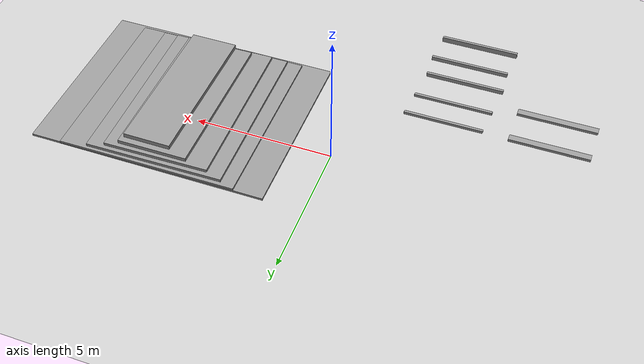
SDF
<sdf version="1.7">
 <world name="default">
  <model name="ground_plane">
   <static>1</static>
   <link name="link">
    <collision name="collision">
     <geometry><plane><normal>0 0 1</normal><size>100 100</size></plane></geometry>
     <surface><friction><ode><mu>0.7</mu><mu2>0.7</mu2></ode></friction></surface>
    </collision>
    <visual name="visual">
     <cast_shadows>0</cast_shadows>
     <geometry><plane><normal>0 0 1</normal><size>100 100</size></plane></geometry>
     <material>
      <script><uri>file://media/materials/scripts/gazebo.material</uri><name>Gazebo/Grey</name></script>
     </material>
    </visual>
   </link>
  </model>
  <light name="sun" type="directional">
   <pose>0 0 10 0 -0 0</pose>
   <diffuse>0.8 0.8 0.8 1</diffuse>
   <specular>0.1 0.1 0.1 1</specular>
   <attenuation>
    <range>1000</range>
    <constant>0.9</constant>
    <linear>0.01</linear>
    <quadratic>0.001</quadratic>
   </attenuation>
   <direction>-0.5 0.5 -1</direction>
   <spot><inner_angle>0</inner_angle><outer_angle>0</outer_angle><falloff>0</falloff></spot>
  </light>
  <gravity>0 0 -9.81</gravity>
  <magnetic_field>6e-06 2.3e-05 -4.2e-05</magnetic_field>
  <atmosphere type="adiabatic"/>
  <physics name="default_physics" default="0" type="ode">
   <max_step_size>0.001</max_step_size>
   <real_time_factor>1</real_time_factor>
   <real_time_update_rate>1000</real_time_update_rate>
  </physics>
  <scene><ambient>0.4 0.4 0.4 1</ambient><background>0.7 0.7 0.7 1</background><shadows>1</shadows></scene>
  <spherical_coordinates>
   <surface_model>EARTH_WGS84</surface_model>
   <latitude_deg>0</latitude_deg>
   <longitude_deg>0</longitude_deg>
   <elevation>0</elevation>
   <heading_deg>0</heading_deg>
  </spherical_coordinates>
  <model name="unit_box">
   <static>1</static>
   <pose>5.78133 -0.659851 0.038678 5e-06 1.5e-05 0.001025</pose>
   <link name="link">
    <inertial>
     <mass>1</mass>
     <inertia>
      <ixx>0.166667</ixx>
      <ixy>0</ixy>
      <ixz>0</ixz>
      <iyy>0.166667</iyy>
      <iyz>0</iyz>
      <izz>0.166667</izz>
     </inertia>
    </inertial>
    <collision name="collision"><geometry><box><size>8.68409 6.67615 0.0802598</size></box></geometry></collision>
    <visual name="visual">
     <geometry><box><size>8.68409 6.67615 0.0802598</size></box></geometry>
     <material>
      <script><name>Gazebo/Grey</name><uri>file://media/materials/scripts/gazebo.material</uri></script>
     </material>
    </visual>
   </link>
  </model>
  <model name="unit_box_clone_clone">
   <static>1</static>
   <pose>5.76077 -0.573205 0.117159 -1.3e-05 1e-05 0.006134</pose>
   <link name="link">
    <inertial>
     <mass>1</mass>
     <inertia>
      <ixx>0.166667</ixx>
      <ixy>0</ixy>
      <ixz>0</ixz>
      <iyy>0.166667</iyy>
      <iyz>0</iyz>
      <izz>0.166667</izz>
     </inertia>
    </inertial>
    <collision name="collision"><geometry><box><size>6.48949 6.53951 0.0795968</size></box></geometry></collision>
    <visual name="visual">
     <geometry><box><size>6.48949 6.53951 0.0795968</size></box></geometry>
     <material>
      <script><name>Gazebo/Grey</name><uri>file://media/materials/scripts/gazebo.material</uri></script>
     </material>
    </visual>
   </link>
  </model>
  <model name="unit_box_clone_clone_0">
   <static>1</static>
   <pose>5.54636 -0.5858 0.19901 -6.8e-05 1e-05 0.013495</pose>
   <link name="link">
    <inertial>
     <mass>1</mass>
     <inertia>
      <ixx>0.166667</ixx>
      <ixy>0</ixy>
      <ixz>0</ixz>
      <iyy>0.166667</iyy>
      <iyz>0</iyz>
      <izz>0.166667</izz>
     </inertia>
    </inertial>
    <collision name="collision"><geometry><box><size>5.00877 6.30633 0.125855</size></box></geometry></collision>
    <visual name="visual">
     <geometry><box><size>5.00877 6.30633 0.125855</size></box></geometry>
     <material>
      <script><name>Gazebo/Grey</name><uri>file://media/materials/scripts/gazebo.material</uri></script>
     </material>
    </visual>
   </link>
  </model>
  <model name="unit_box_clone_clone_1">
   <static>1</static>
   <pose>5.53214 -0.620945 0.264766 -6.9e-05 1e-05 0.016868</pose>
   <link name="link">
    <inertial>
     <mass>1</mass>
     <inertia>
      <ixx>0.166667</ixx>
      <ixy>0</ixy>
      <ixz>0</ixz>
      <iyy>0.166667</iyy>
      <iyz>0</iyz>
      <izz>0.166667</izz>
     </inertia>
    </inertial>
    <collision name="collision"><geometry><box><size>3.8324 6.06711 0.215681</size></box></geometry></collision>
    <visual name="visual">
     <geometry><box><size>3.8324 6.06711 0.215681</size></box></geometry>
     <material>
      <script><name>Gazebo/Grey</name><uri>file://media/materials/scripts/gazebo.material</uri></script>
     </material>
    </visual>
   </link>
  </model>
  <model name="unit_box_0">
   <static>1</static>
   <pose>5.67204 -0.620348 0.396278 1.6e-05 4.6e-05 0.004141</pose>
   <link name="link">
    <inertial>
     <mass>1</mass>
     <inertia>
      <ixx>0.166667</ixx>
      <ixy>0</ixy>
      <ixz>0</ixz>
      <iyy>0.166667</iyy>
      <iyz>0</iyz>
      <izz>0.166667</izz>
     </inertia>
    </inertial>
    <collision name="collision"><geometry><box><size>2.5387 5.78441 0.219353</size></box></geometry></collision>
    <visual name="visual">
     <geometry><box><size>2.5387 5.78441 0.219353</size></box></geometry>
     <material>
      <script><name>Gazebo/Grey</name><uri>file://media/materials/scripts/gazebo.material</uri></script>
     </material>
    </visual>
   </link>
  </model>
  <model name="unit_box_1">
   <static>1</static>
   <pose>5.93033 -0.737289 0.507139 1.6e-05 4.6e-05 -0.0027</pose>
   <link name="link">
    <inertial>
     <mass>1</mass>
     <inertia>
      <ixx>0.166667</ixx>
      <ixy>0</ixy>
      <ixz>0</ixz>
      <iyy>0.166667</iyy>
      <iyz>0</iyz>
      <izz>0.166667</izz>
     </inertia>
    </inertial>
    <collision name="collision"><geometry><box><size>1.72237 5.5961 0.326992</size></box></geometry></collision>
    <visual name="visual">
     <geometry><box><size>1.72237 5.5961 0.326992</size></box></geometry>
     <material>
      <script><name>Gazebo/Grey</name><uri>file://media/materials/scripts/gazebo.material</uri></script>
     </material>
    </visual>
   </link>
  </model>
  <model name="unit_box_2">
   <link name="link">
    <inertial>
     <mass>1</mass>
     <inertia>
      <ixx>0.166667</ixx>
      <ixy>0</ixy>
      <ixz>0</ixz>
      <iyy>0.166667</iyy>
      <iyz>0</iyz>
      <izz>0.166667</izz>
     </inertia>
    </inertial>
    <visual name="visual">
     <geometry><box><size>2.87721 0.1 0.1</size></box></geometry>
     <material>
      <script><name>Gazebo/Grey</name><uri>file://media/materials/scripts/gazebo.material</uri></script>
      <shader type="pixel"><normal_map>__default__</normal_map></shader>
      <ambient>0.3 0.3 0.3 1</ambient>
      <diffuse>0.7 0.7 0.7 1</diffuse>
      <specular>0.01 0.01 0.01 1</specular>
      <emissive>0 0 0 1</emissive>
     </material>
    </visual>
    <collision name="collision">
     <geometry><box><size>2.87721 0.1 0.1</size></box></geometry>
     <surface>
      <friction>
       <ode><mu>1</mu><mu2>1</mu2><fdir1>0 0 0</fdir1><slip1>0</slip1><slip2>0</slip2></ode>
       <torsional>
        <coefficient>1</coefficient>
        <patch_radius>0</patch_radius>
        <surface_radius>0</surface_radius>
        <use_patch_radius>1</use_patch_radius>
        <ode><slip>0</slip></ode>
       </torsional>
      </friction>
      <bounce><restitution_coefficient>0</restitution_coefficient><threshold>1e+06</threshold></bounce>
      <contact>
       <collide_without_contact>0</collide_without_contact>
       <collide_without_contact_bitmask>1</collide_without_contact_bitmask>
       <collide_bitmask>1</collide_bitmask>
       <ode>
        <soft_cfm>0</soft_cfm>
        <soft_erp>0.2</soft_erp>
        <kp>1e+13</kp>
        <kd>1</kd>
        <max_vel>0.01</max_vel>
        <min_depth>0</min_depth>
       </ode>
       <bullet>
        <split_impulse>1</split_impulse>
        <split_impulse_penetration_threshold>-0.01</split_impulse_penetration_threshold>
        <soft_cfm>0</soft_cfm>
        <soft_erp>0.2</soft_erp>
        <kp>1e+13</kp>
        <kd>1</kd>
       </bullet>
      </contact>
     </surface>
    </collision>
   </link>
   <static>0</static>
   <pose>5.10246 -1.16009 -0.000733 -0.000531 0.035372 -0.01502</pose>
  </model>
  <model name="pipe_0.1">
   <link name="link">
    <inertial>
     <mass>1</mass>
     <inertia>
      <ixx>0.166667</ixx>
      <ixy>0</ixy>
      <ixz>0</ixz>
      <iyy>0.166667</iyy>
      <iyz>0</iyz>
      <izz>0.166667</izz>
     </inertia>
    </inertial>
    <visual name="visual">
     <geometry><box><size>2.87721 0.1 0.1</size></box></geometry>
     <material>
      <script><name>Gazebo/Grey</name><uri>file://media/materials/scripts/gazebo.material</uri></script>
      <shader type="pixel"><normal_map>__default__</normal_map></shader>
      <ambient>0.3 0.3 0.3 1</ambient>
      <diffuse>0.7 0.7 0.7 1</diffuse>
      <specular>0.01 0.01 0.01 1</specular>
      <emissive>0 0 0 1</emissive>
     </material>
    </visual>
    <collision name="collision">
     <geometry><box><size>2.87721 0.1 0.1</size></box></geometry>
     <surface>
      <friction>
       <ode><mu>1</mu><mu2>1</mu2><fdir1>0 0 0</fdir1><slip1>0</slip1><slip2>0</slip2></ode>
       <torsional>
        <coefficient>1</coefficient>
        <patch_radius>0</patch_radius>
        <surface_radius>0</surface_radius>
        <use_patch_radius>1</use_patch_radius>
        <ode><slip>0</slip></ode>
       </torsional>
      </friction>
      <bounce><restitution_coefficient>0</restitution_coefficient><threshold>1e+06</threshold></bounce>
      <contact>
       <collide_without_contact>0</collide_without_contact>
       <collide_without_contact_bitmask>1</collide_without_contact_bitmask>
       <collide_bitmask>1</collide_bitmask>
       <ode>
        <soft_cfm>0</soft_cfm>
        <soft_erp>0.2</soft_erp>
        <kp>1e+13</kp>
        <kd>1</kd>
        <max_vel>0.01</max_vel>
        <min_depth>0</min_depth>
       </ode>
       <bullet>
        <split_impulse>1</split_impulse>
        <split_impulse_penetration_threshold>-0.01</split_impulse_penetration_threshold>
        <soft_cfm>0</soft_cfm>
        <soft_erp>0.2</soft_erp>
        <kp>1e+13</kp>
        <kd>1</kd>
       </bullet>
      </contact>
     </surface>
    </collision>
   </link>
   <static>1</static>
   <pose>-3.25518 -3.93508 0.049491 0 -0 0</pose>
  </model>
  <model name="pipe_0.15">
   <link name="link">
    <inertial>
     <mass>1</mass>
     <inertia>
      <ixx>0.166667</ixx>
      <ixy>0</ixy>
      <ixz>0</ixz>
      <iyy>0.166667</iyy>
      <iyz>0</iyz>
      <izz>0.166667</izz>
     </inertia>
    </inertial>
    <visual name="visual">
     <geometry><box><size>2.87721 0.1 0.15</size></box></geometry>
     <material>
      <script><name>Gazebo/Grey</name><uri>file://media/materials/scripts/gazebo.material</uri></script>
      <shader type="pixel"><normal_map>__default__</normal_map></shader>
      <ambient>0.3 0.3 0.3 1</ambient>
      <diffuse>0.7 0.7 0.7 1</diffuse>
      <specular>0.01 0.01 0.01 1</specular>
      <emissive>0 0 0 1</emissive>
     </material>
    </visual>
    <collision name="collision">
     <geometry><box><size>2.87721 0.1 0.15</size></box></geometry>
     <surface>
      <friction>
       <ode><mu>1</mu><mu2>1</mu2><fdir1>0 0 0</fdir1><slip1>0</slip1><slip2>0</slip2></ode>
       <torsional>
        <coefficient>1</coefficient>
        <patch_radius>0</patch_radius>
        <surface_radius>0</surface_radius>
        <use_patch_radius>1</use_patch_radius>
        <ode><slip>0</slip></ode>
       </torsional>
      </friction>
      <bounce><restitution_coefficient>0</restitution_coefficient><threshold>1e+06</threshold></bounce>
      <contact>
       <collide_without_contact>0</collide_without_contact>
       <collide_without_contact_bitmask>1</collide_without_contact_bitmask>
       <collide_bitmask>1</collide_bitmask>
       <ode>
        <soft_cfm>0</soft_cfm>
        <soft_erp>0.2</soft_erp>
        <kp>1e+13</kp>
        <kd>1</kd>
        <max_vel>0.01</max_vel>
        <min_depth>0</min_depth>
       </ode>
       <bullet>
        <split_impulse>1</split_impulse>
        <split_impulse_penetration_threshold>-0.01</split_impulse_penetration_threshold>
        <soft_cfm>0</soft_cfm>
        <soft_erp>0.2</soft_erp>
        <kp>1e+13</kp>
        <kd>1</kd>
       </bullet>
      </contact>
     </surface>
    </collision>
   </link>
   <static>1</static>
   <pose>-3.36878 -5.1364 0.073658 0 -0 0</pose>
  </model>
  <model name="pipe_0.20">
   <link name="link">
    <inertial>
     <mass>1</mass>
     <inertia>
      <ixx>0.166667</ixx>
      <ixy>0</ixy>
      <ixz>0</ixz>
      <iyy>0.166667</iyy>
      <iyz>0</iyz>
      <izz>0.166667</izz>
     </inertia>
    </inertial>
    <visual name="visual">
     <geometry><box><size>2.87721 0.1 0.2</size></box></geometry>
     <material>
      <script><name>Gazebo/Grey</name><uri>file://media/materials/scripts/gazebo.material</uri></script>
      <shader type="pixel"><normal_map>__default__</normal_map></shader>
      <ambient>0.3 0.3 0.3 1</ambient>
      <diffuse>0.7 0.7 0.7 1</diffuse>
      <specular>0.01 0.01 0.01 1</specular>
      <emissive>0 0 0 1</emissive>
     </material>
    </visual>
    <collision name="collision">
     <geometry><box><size>2.87721 0.1 0.2</size></box></geometry>
     <surface>
      <friction>
       <ode><mu>1</mu><mu2>1</mu2><fdir1>0 0 0</fdir1><slip1>0</slip1><slip2>0</slip2></ode>
       <torsional>
        <coefficient>1</coefficient>
        <patch_radius>0</patch_radius>
        <surface_radius>0</surface_radius>
        <use_patch_radius>1</use_patch_radius>
        <ode><slip>0</slip></ode>
       </torsional>
      </friction>
      <bounce><restitution_coefficient>0</restitution_coefficient><threshold>1e+06</threshold></bounce>
      <contact>
       <collide_without_contact>0</collide_without_contact>
       <collide_without_contact_bitmask>1</collide_without_contact_bitmask>
       <collide_bitmask>1</collide_bitmask>
       <ode>
        <soft_cfm>0</soft_cfm>
        <soft_erp>0.2</soft_erp>
        <kp>1e+13</kp>
        <kd>1</kd>
        <max_vel>0.01</max_vel>
        <min_depth>0</min_depth>
       </ode>
       <bullet>
        <split_impulse>1</split_impulse>
        <split_impulse_penetration_threshold>-0.01</split_impulse_penetration_threshold>
        <soft_cfm>0</soft_cfm>
        <soft_erp>0.2</soft_erp>
        <kp>1e+13</kp>
        <kd>1</kd>
       </bullet>
      </contact>
     </surface>
    </collision>
   </link>
   <static>1</static>
   <pose>-3.39538 -7.25623 0.104241 0 -0 0</pose>
  </model>
  <model name="pipe_0.1_clone">
   <link name="link">
    <inertial>
     <mass>1</mass>
     <inertia>
      <ixx>0.166667</ixx>
      <ixy>0</ixy>
      <ixz>0</ixz>
      <iyy>0.166667</iyy>
      <iyz>0</iyz>
      <izz>0.166667</izz>
     </inertia>
    </inertial>
    <visual name="visual">
     <geometry><box><size>2.87721 0.1 0.1</size></box></geometry>
     <material>
      <script><name>Gazebo/Grey</name><uri>file://media/materials/scripts/gazebo.material</uri></script>
      <shader type="pixel"><normal_map>__default__</normal_map></shader>
      <ambient>0.3 0.3 0.3 1</ambient>
      <diffuse>0.7 0.7 0.7 1</diffuse>
      <specular>0.01 0.01 0.01 1</specular>
      <emissive>0 0 0 1</emissive>
     </material>
    </visual>
    <collision name="collision">
     <geometry><box><size>2.87721 0.1 0.1</size></box></geometry>
     <surface>
      <friction>
       <ode><mu>1</mu><mu2>1</mu2><fdir1>0 0 0</fdir1><slip1>0</slip1><slip2>0</slip2></ode>
       <torsional>
        <coefficient>1</coefficient>
        <patch_radius>0</patch_radius>
        <surface_radius>0</surface_radius>
        <use_patch_radius>1</use_patch_radius>
        <ode><slip>0</slip></ode>
       </torsional>
      </friction>
      <bounce><restitution_coefficient>0</restitution_coefficient><threshold>1e+06</threshold></bounce>
      <contact>
       <collide_without_contact>0</collide_without_contact>
       <collide_without_contact_bitmask>1</collide_without_contact_bitmask>
       <collide_bitmask>1</collide_bitmask>
       <ode>
        <soft_cfm>0</soft_cfm>
        <soft_erp>0.2</soft_erp>
        <kp>1e+13</kp>
        <kd>1</kd>
        <max_vel>0.01</max_vel>
        <min_depth>0</min_depth>
       </ode>
       <bullet>
        <split_impulse>1</split_impulse>
        <split_impulse_penetration_threshold>-0.01</split_impulse_penetration_threshold>
        <soft_cfm>0</soft_cfm>
        <soft_erp>0.2</soft_erp>
        <kp>1e+13</kp>
        <kd>1</kd>
       </bullet>
      </contact>
     </surface>
    </collision>
   </link>
   <static>1</static>
   <pose>-3.16301 -2.92769 0.049491 0 -0 0</pose>
  </model>
  <model name="pipe_0.15_clone">
   <link name="link">
    <inertial>
     <mass>1</mass>
     <inertia>
      <ixx>0.166667</ixx>
      <ixy>0</ixy>
      <ixz>0</ixz>
      <iyy>0.166667</iyy>
      <iyz>0</iyz>
      <izz>0.166667</izz>
     </inertia>
    </inertial>
    <visual name="visual">
     <geometry><box><size>2.87721 0.1 0.15</size></box></geometry>
     <material>
      <script><name>Gazebo/Grey</name><uri>file://media/materials/scripts/gazebo.material</uri></script>
      <shader type="pixel"><normal_map>__default__</normal_map></shader>
      <ambient>0.3 0.3 0.3 1</ambient>
      <diffuse>0.7 0.7 0.7 1</diffuse>
      <specular>0.01 0.01 0.01 1</specular>
      <emissive>0 0 0 1</emissive>
     </material>
    </visual>
    <collision name="collision">
     <geometry><box><size>2.87721 0.1 0.15</size></box></geometry>
     <surface>
      <friction>
       <ode><mu>1</mu><mu2>1</mu2><fdir1>0 0 0</fdir1><slip1>0</slip1><slip2>0</slip2></ode>
       <torsional>
        <coefficient>1</coefficient>
        <patch_radius>0</patch_radius>
        <surface_radius>0</surface_radius>
        <use_patch_radius>1</use_patch_radius>
        <ode><slip>0</slip></ode>
       </torsional>
      </friction>
      <bounce><restitution_coefficient>0</restitution_coefficient><threshold>1e+06</threshold></bounce>
      <contact>
       <collide_without_contact>0</collide_without_contact>
       <collide_without_contact_bitmask>1</collide_without_contact_bitmask>
       <collide_bitmask>1</collide_bitmask>
       <ode>
        <soft_cfm>0</soft_cfm>
        <soft_erp>0.2</soft_erp>
        <kp>1e+13</kp>
        <kd>1</kd>
        <max_vel>0.01</max_vel>
        <min_depth>0</min_depth>
       </ode>
       <bullet>
        <split_impulse>1</split_impulse>
        <split_impulse_penetration_threshold>-0.01</split_impulse_penetration_threshold>
        <soft_cfm>0</soft_cfm>
        <soft_erp>0.2</soft_erp>
        <kp>1e+13</kp>
        <kd>1</kd>
       </bullet>
      </contact>
     </surface>
    </collision>
   </link>
   <static>1</static>
   <pose>-3.30074 -6.09274 0.073658 0 -0 0</pose>
  </model>
  <model name="pipe_0.1_clone_clone">
   <link name="link">
    <inertial>
     <mass>1</mass>
     <inertia>
      <ixx>0.166667</ixx>
      <ixy>0</ixy>
      <ixz>0</ixz>
      <iyy>0.166667</iyy>
      <iyz>0</iyz>
      <izz>0.166667</izz>
     </inertia>
    </inertial>
    <visual name="visual">
     <geometry><box><size>2.87721 0.243662 0.1</size></box></geometry>
     <material>
      <script><name>Gazebo/Grey</name><uri>file://media/materials/scripts/gazebo.material</uri></script>
      <shader type="pixel"><normal_map>__default__</normal_map></shader>
      <ambient>0.3 0.3 0.3 1</ambient>
      <diffuse>0.7 0.7 0.7 1</diffuse>
      <specular>0.01 0.01 0.01 1</specular>
      <emissive>0 0 0 1</emissive>
     </material>
    </visual>
    <collision name="collision">
     <geometry><box><size>2.87721 0.243662 0.1</size></box></geometry>
     <surface>
      <friction>
       <ode><mu>1</mu><mu2>1</mu2><fdir1>0 0 0</fdir1><slip1>0</slip1><slip2>0</slip2></ode>
       <torsional>
        <coefficient>1</coefficient>
        <patch_radius>0</patch_radius>
        <surface_radius>0</surface_radius>
        <use_patch_radius>1</use_patch_radius>
        <ode><slip>0</slip></ode>
       </torsional>
      </friction>
      <bounce><restitution_coefficient>0</restitution_coefficient><threshold>1e+06</threshold></bounce>
      <contact>
       <collide_without_contact>0</collide_without_contact>
       <collide_without_contact_bitmask>1</collide_without_contact_bitmask>
       <collide_bitmask>1</collide_bitmask>
       <ode>
        <soft_cfm>0</soft_cfm>
        <soft_erp>0.2</soft_erp>
        <kp>1e+13</kp>
        <kd>1</kd>
        <max_vel>0.01</max_vel>
        <min_depth>0</min_depth>
       </ode>
       <bullet>
        <split_impulse>1</split_impulse>
        <split_impulse_penetration_threshold>-0.01</split_impulse_penetration_threshold>
        <soft_cfm>0</soft_cfm>
        <soft_erp>0.2</soft_erp>
        <kp>1e+13</kp>
        <kd>1</kd>
       </bullet>
      </contact>
     </surface>
    </collision>
   </link>
   <static>1</static>
   <pose>-6.95701 -2.94768 0.049491 0 -0 0</pose>
  </model>
  <model name="pipe_0.1_clone_clone_clone">
   <link name="link">
    <inertial>
     <mass>1</mass>
     <inertia>
      <ixx>0.166667</ixx>
      <ixy>0</ixy>
      <ixz>0</ixz>
      <iyy>0.166667</iyy>
      <iyz>0</iyz>
      <izz>0.166667</izz>
     </inertia>
    </inertial>
    <visual name="visual">
     <geometry><box><size>2.87721 0.243662 0.1</size></box></geometry>
     <material>
      <script><name>Gazebo/Grey</name><uri>file://media/materials/scripts/gazebo.material</uri></script>
      <shader type="pixel"><normal_map>__default__</normal_map></shader>
      <ambient>0.3 0.3 0.3 1</ambient>
      <diffuse>0.7 0.7 0.7 1</diffuse>
      <specular>0.01 0.01 0.01 1</specular>
      <emissive>0 0 0 1</emissive>
     </material>
    </visual>
    <collision name="collision">
     <geometry><box><size>2.87721 0.243662 0.1</size></box></geometry>
     <surface>
      <friction>
       <ode><mu>1</mu><mu2>1</mu2><fdir1>0 0 0</fdir1><slip1>0</slip1><slip2>0</slip2></ode>
       <torsional>
        <coefficient>1</coefficient>
        <patch_radius>0</patch_radius>
        <surface_radius>0</surface_radius>
        <use_patch_radius>1</use_patch_radius>
        <ode><slip>0</slip></ode>
       </torsional>
      </friction>
      <bounce><restitution_coefficient>0</restitution_coefficient><threshold>1e+06</threshold></bounce>
      <contact>
       <collide_without_contact>0</collide_without_contact>
       <collide_without_contact_bitmask>1</collide_without_contact_bitmask>
       <collide_bitmask>1</collide_bitmask>
       <ode>
        <soft_cfm>0</soft_cfm>
        <soft_erp>0.2</soft_erp>
        <kp>1e+13</kp>
        <kd>1</kd>
        <max_vel>0.01</max_vel>
        <min_depth>0</min_depth>
       </ode>
       <bullet>
        <split_impulse>1</split_impulse>
        <split_impulse_penetration_threshold>-0.01</split_impulse_penetration_threshold>
        <soft_cfm>0</soft_cfm>
        <soft_erp>0.2</soft_erp>
        <kp>1e+13</kp>
        <kd>1</kd>
       </bullet>
      </contact>
     </surface>
    </collision>
   </link>
   <static>1</static>
   <pose>-6.96811 -4.32315 0.049491 0 -0 0</pose>
  </model>
 </world>
</sdf>
